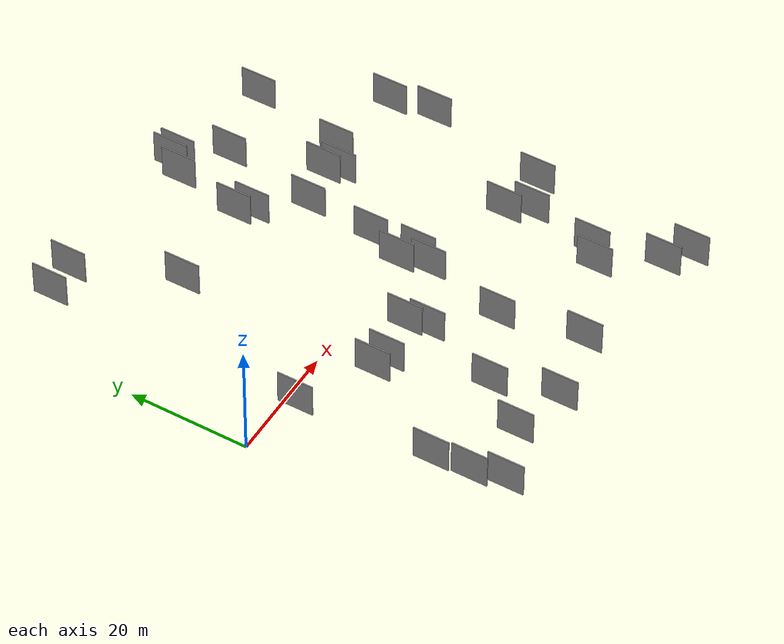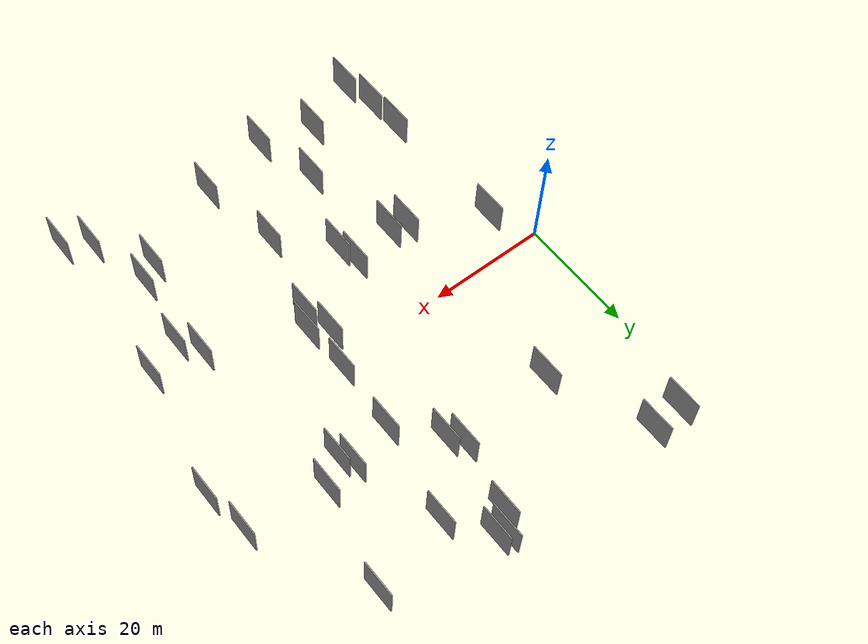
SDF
<sdf version="1.6">
 <world name="default">
  <scene>
   <sky><clouds><speed>12</speed></clouds></sky>
   <ambient>0.4 0.4 0.4 1</ambient>
   <background>0.7 0.7 0.7 1</background>
   <shadows>1</shadows>
  </scene>
  <gravity>0 0 -9.8066</gravity>
  <magnetic_field>6e-06 2.3e-05 -4.2e-05</magnetic_field>
  <physics default="0" name="default_physics" type="ode">
   <ode>
    <solver>
     <type>quick</type>
     <iters>10</iters>
     <sor>1.0</sor>
     <use_dynamic_moi_rescaling>0</use_dynamic_moi_rescaling>
    </solver>
    <constraints>
     <cfm>0</cfm>
     <erp>0.2</erp>
     <contact_max_correcting_vel>100</contact_max_correcting_vel>
     <contact_surface_layer>0.001</contact_surface_layer>
    </constraints>
   </ode>
   <max_step_size>0.004</max_step_size>
   <real_time_factor>1</real_time_factor>
   <real_time_update_rate>250</real_time_update_rate>
  </physics>
  <light name="sun" type="directional">
   <pose>0 0 10 0 0 0</pose>
   <diffuse>0.8 0.8 0.8 1</diffuse>
   <specular>0.2 0.2 0.2 1</specular>
   <attenuation>
    <range>1000</range>
    <constant>0.9</constant>
    <linear>0.01</linear>
    <quadratic>0.001</quadratic>
   </attenuation>
   <direction>-0.5 0.1 -0.9</direction>
  </light>
  <model name="grey_wall_1">
   <static>1</static>
   <pose>58.4703 34.0821 5.0 0.000000 0.000000 1.570796</pose>
   <link name="link">
    <pose>0 0 3.00 0 0 0</pose>
    <collision name="collision"><geometry><box><size>6.00 0.2 6.00</size></box></geometry></collision>
    <visual name="visual">
     <cast_shadows>0</cast_shadows>
     <geometry><box><size>6.00 0.2 6.00</size></box></geometry>
     <material>
      <script>
       <uri>model://grey_wall/materials/scripts</uri>
       <uri>model://grey_wall/materials/textures</uri>
       <name>vrc/grey_wall</name>
      </script>
     </material>
    </visual>
   </link>
  </model>
  <model name="grey_wall_2">
   <static>1</static>
   <pose>39.1289 -2.4536 5.0 0.000000 0.000000 1.570796</pose>
   <link name="link">
    <pose>0 0 3.00 0 0 0</pose>
    <collision name="collision"><geometry><box><size>6.00 0.2 6.00</size></box></geometry></collision>
    <visual name="visual">
     <cast_shadows>0</cast_shadows>
     <geometry><box><size>6.00 0.2 6.00</size></box></geometry>
     <material>
      <script>
       <uri>model://grey_wall/materials/scripts</uri>
       <uri>model://grey_wall/materials/textures</uri>
       <name>vrc/grey_wall</name>
      </script>
     </material>
    </visual>
   </link>
  </model>
  <model name="grey_wall_3">
   <static>1</static>
   <pose>37.2898 35.3310 5.0 0.000000 0.000000 1.570796</pose>
   <link name="link">
    <pose>0 0 3.00 0 0 0</pose>
    <collision name="collision"><geometry><box><size>6.00 0.2 6.00</size></box></geometry></collision>
    <visual name="visual">
     <cast_shadows>0</cast_shadows>
     <geometry><box><size>6.00 0.2 6.00</size></box></geometry>
     <material>
      <script>
       <uri>model://grey_wall/materials/scripts</uri>
       <uri>model://grey_wall/materials/textures</uri>
       <name>vrc/grey_wall</name>
      </script>
     </material>
    </visual>
   </link>
  </model>
  <model name="grey_wall_4">
   <static>1</static>
   <pose>7.5327 -27.0088 5.0 0.000000 0.000000 1.570796</pose>
   <link name="link">
    <pose>0 0 3.00 0 0 0</pose>
    <collision name="collision"><geometry><box><size>6.00 0.2 6.00</size></box></geometry></collision>
    <visual name="visual">
     <cast_shadows>0</cast_shadows>
     <geometry><box><size>6.00 0.2 6.00</size></box></geometry>
     <material>
      <script>
       <uri>model://grey_wall/materials/scripts</uri>
       <uri>model://grey_wall/materials/textures</uri>
       <name>vrc/grey_wall</name>
      </script>
     </material>
    </visual>
   </link>
  </model>
  <model name="grey_wall_5">
   <static>1</static>
   <pose>54.8426 17.7074 5.0 0.000000 0.000000 1.570796</pose>
   <link name="link">
    <pose>0 0 3.00 0 0 0</pose>
    <collision name="collision"><geometry><box><size>6.00 0.2 6.00</size></box></geometry></collision>
    <visual name="visual">
     <cast_shadows>0</cast_shadows>
     <geometry><box><size>6.00 0.2 6.00</size></box></geometry>
     <material>
      <script>
       <uri>model://grey_wall/materials/scripts</uri>
       <uri>model://grey_wall/materials/textures</uri>
       <name>vrc/grey_wall</name>
      </script>
     </material>
    </visual>
   </link>
  </model>
  <model name="grey_wall_6">
   <static>1</static>
   <pose>50.8543 14.8226 5.0 0.000000 0.000000 1.570796</pose>
   <link name="link">
    <pose>0 0 3.00 0 0 0</pose>
    <collision name="collision"><geometry><box><size>6.00 0.2 6.00</size></box></geometry></collision>
    <visual name="visual">
     <cast_shadows>0</cast_shadows>
     <geometry><box><size>6.00 0.2 6.00</size></box></geometry>
     <material>
      <script>
       <uri>model://grey_wall/materials/scripts</uri>
       <uri>model://grey_wall/materials/textures</uri>
       <name>vrc/grey_wall</name>
      </script>
     </material>
    </visual>
   </link>
  </model>
  <model name="grey_wall_7">
   <static>1</static>
   <pose>27.3128 -37.2842 5.0 0.000000 0.000000 1.570796</pose>
   <link name="link">
    <pose>0 0 3.00 0 0 0</pose>
    <collision name="collision"><geometry><box><size>6.00 0.2 6.00</size></box></geometry></collision>
    <visual name="visual">
     <cast_shadows>0</cast_shadows>
     <geometry><box><size>6.00 0.2 6.00</size></box></geometry>
     <material>
      <script>
       <uri>model://grey_wall/materials/scripts</uri>
       <uri>model://grey_wall/materials/textures</uri>
       <name>vrc/grey_wall</name>
      </script>
     </material>
    </visual>
   </link>
  </model>
  <model name="grey_wall_8">
   <static>1</static>
   <pose>63.1718 -39.9099 5.0 0.000000 0.000000 1.570796</pose>
   <link name="link">
    <pose>0 0 3.00 0 0 0</pose>
    <collision name="collision"><geometry><box><size>6.00 0.2 6.00</size></box></geometry></collision>
    <visual name="visual">
     <cast_shadows>0</cast_shadows>
     <geometry><box><size>6.00 0.2 6.00</size></box></geometry>
     <material>
      <script>
       <uri>model://grey_wall/materials/scripts</uri>
       <uri>model://grey_wall/materials/textures</uri>
       <name>vrc/grey_wall</name>
      </script>
     </material>
    </visual>
   </link>
  </model>
  <model name="grey_wall_9">
   <static>1</static>
   <pose>64.5312 -12.4695 5.0 0.000000 0.000000 1.570796</pose>
   <link name="link">
    <pose>0 0 3.00 0 0 0</pose>
    <collision name="collision"><geometry><box><size>6.00 0.2 6.00</size></box></geometry></collision>
    <visual name="visual">
     <cast_shadows>0</cast_shadows>
     <geometry><box><size>6.00 0.2 6.00</size></box></geometry>
     <material>
      <script>
       <uri>model://grey_wall/materials/scripts</uri>
       <uri>model://grey_wall/materials/textures</uri>
       <name>vrc/grey_wall</name>
      </script>
     </material>
    </visual>
   </link>
  </model>
  <model name="grey_wall_10">
   <static>1</static>
   <pose>18.1744 -10.7670 5.0 0.000000 0.000000 1.570796</pose>
   <link name="link">
    <pose>0 0 3.00 0 0 0</pose>
    <collision name="collision"><geometry><box><size>6.00 0.2 6.00</size></box></geometry></collision>
    <visual name="visual">
     <cast_shadows>0</cast_shadows>
     <geometry><box><size>6.00 0.2 6.00</size></box></geometry>
     <material>
      <script>
       <uri>model://grey_wall/materials/scripts</uri>
       <uri>model://grey_wall/materials/textures</uri>
       <name>vrc/grey_wall</name>
      </script>
     </material>
    </visual>
   </link>
  </model>
  <model name="grey_wall_11">
   <static>1</static>
   <pose>41.8810 -4.5876 5.0 0.000000 0.000000 1.570796</pose>
   <link name="link">
    <pose>0 0 3.00 0 0 0</pose>
    <collision name="collision"><geometry><box><size>6.00 0.2 6.00</size></box></geometry></collision>
    <visual name="visual">
     <cast_shadows>0</cast_shadows>
     <geometry><box><size>6.00 0.2 6.00</size></box></geometry>
     <material>
      <script>
       <uri>model://grey_wall/materials/scripts</uri>
       <uri>model://grey_wall/materials/textures</uri>
       <name>vrc/grey_wall</name>
      </script>
     </material>
    </visual>
   </link>
  </model>
  <model name="grey_wall_12">
   <static>1</static>
   <pose>41.5026 3.5121 5.0 0.000000 0.000000 1.570796</pose>
   <link name="link">
    <pose>0 0 3.00 0 0 0</pose>
    <collision name="collision"><geometry><box><size>6.00 0.2 6.00</size></box></geometry></collision>
    <visual name="visual">
     <cast_shadows>0</cast_shadows>
     <geometry><box><size>6.00 0.2 6.00</size></box></geometry>
     <material>
      <script>
       <uri>model://grey_wall/materials/scripts</uri>
       <uri>model://grey_wall/materials/textures</uri>
       <name>vrc/grey_wall</name>
      </script>
     </material>
    </visual>
   </link>
  </model>
  <model name="grey_wall_13">
   <static>1</static>
   <pose>45.2377 31.1383 5.0 0.000000 0.000000 1.570796</pose>
   <link name="link">
    <pose>0 0 3.00 0 0 0</pose>
    <collision name="collision"><geometry><box><size>6.00 0.2 6.00</size></box></geometry></collision>
    <visual name="visual">
     <cast_shadows>0</cast_shadows>
     <geometry><box><size>6.00 0.2 6.00</size></box></geometry>
     <material>
      <script>
       <uri>model://grey_wall/materials/scripts</uri>
       <uri>model://grey_wall/materials/textures</uri>
       <name>vrc/grey_wall</name>
      </script>
     </material>
    </visual>
   </link>
  </model>
  <model name="grey_wall_14">
   <static>1</static>
   <pose>39.2931 38.1117 5.0 0.000000 0.000000 1.570796</pose>
   <link name="link">
    <pose>0 0 3.00 0 0 0</pose>
    <collision name="collision"><geometry><box><size>6.00 0.2 6.00</size></box></geometry></collision>
    <visual name="visual">
     <cast_shadows>0</cast_shadows>
     <geometry><box><size>6.00 0.2 6.00</size></box></geometry>
     <material>
      <script>
       <uri>model://grey_wall/materials/scripts</uri>
       <uri>model://grey_wall/materials/textures</uri>
       <name>vrc/grey_wall</name>
      </script>
     </material>
    </visual>
   </link>
  </model>
  <model name="grey_wall_15">
   <static>1</static>
   <pose>29.2895 -13.5957 5.0 0.000000 0.000000 1.570796</pose>
   <link name="link">
    <pose>0 0 3.00 0 0 0</pose>
    <collision name="collision"><geometry><box><size>6.00 0.2 6.00</size></box></geometry></collision>
    <visual name="visual">
     <cast_shadows>0</cast_shadows>
     <geometry><box><size>6.00 0.2 6.00</size></box></geometry>
     <material>
      <script>
       <uri>model://grey_wall/materials/scripts</uri>
       <uri>model://grey_wall/materials/textures</uri>
       <name>vrc/grey_wall</name>
      </script>
     </material>
    </visual>
   </link>
  </model>
  <model name="grey_wall_16">
   <static>1</static>
   <pose>36.6816 21.6988 5.0 0.000000 0.000000 1.570796</pose>
   <link name="link">
    <pose>0 0 3.00 0 0 0</pose>
    <collision name="collision"><geometry><box><size>6.00 0.2 6.00</size></box></geometry></collision>
    <visual name="visual">
     <cast_shadows>0</cast_shadows>
     <geometry><box><size>6.00 0.2 6.00</size></box></geometry>
     <material>
      <script>
       <uri>model://grey_wall/materials/scripts</uri>
       <uri>model://grey_wall/materials/textures</uri>
       <name>vrc/grey_wall</name>
      </script>
     </material>
    </visual>
   </link>
  </model>
  <model name="grey_wall_17">
   <static>1</static>
   <pose>42.3460 15.0995 5.0 0.000000 0.000000 1.570796</pose>
   <link name="link">
    <pose>0 0 3.00 0 0 0</pose>
    <collision name="collision"><geometry><box><size>6.00 0.2 6.00</size></box></geometry></collision>
    <visual name="visual">
     <cast_shadows>0</cast_shadows>
     <geometry><box><size>6.00 0.2 6.00</size></box></geometry>
     <material>
      <script>
       <uri>model://grey_wall/materials/scripts</uri>
       <uri>model://grey_wall/materials/textures</uri>
       <name>vrc/grey_wall</name>
      </script>
     </material>
    </visual>
   </link>
  </model>
  <model name="grey_wall_18">
   <static>1</static>
   <pose>12.0139 38.8188 5.0 0.000000 0.000000 1.570796</pose>
   <link name="link">
    <pose>0 0 3.00 0 0 0</pose>
    <collision name="collision"><geometry><box><size>6.00 0.2 6.00</size></box></geometry></collision>
    <visual name="visual">
     <cast_shadows>0</cast_shadows>
     <geometry><box><size>6.00 0.2 6.00</size></box></geometry>
     <material>
      <script>
       <uri>model://grey_wall/materials/scripts</uri>
       <uri>model://grey_wall/materials/textures</uri>
       <name>vrc/grey_wall</name>
      </script>
     </material>
    </visual>
   </link>
  </model>
  <model name="grey_wall_19">
   <static>1</static>
   <pose>59.2169 -37.2343 5.0 0.000000 0.000000 1.570796</pose>
   <link name="link">
    <pose>0 0 3.00 0 0 0</pose>
    <collision name="collision"><geometry><box><size>6.00 0.2 6.00</size></box></geometry></collision>
    <visual name="visual">
     <cast_shadows>0</cast_shadows>
     <geometry><box><size>6.00 0.2 6.00</size></box></geometry>
     <material>
      <script>
       <uri>model://grey_wall/materials/scripts</uri>
       <uri>model://grey_wall/materials/textures</uri>
       <name>vrc/grey_wall</name>
      </script>
     </material>
    </visual>
   </link>
  </model>
  <model name="grey_wall_20">
   <static>1</static>
   <pose>7.8128 -33.2635 5.0 0.000000 0.000000 1.570796</pose>
   <link name="link">
    <pose>0 0 3.00 0 0 0</pose>
    <collision name="collision"><geometry><box><size>6.00 0.2 6.00</size></box></geometry></collision>
    <visual name="visual">
     <cast_shadows>0</cast_shadows>
     <geometry><box><size>6.00 0.2 6.00</size></box></geometry>
     <material>
      <script>
       <uri>model://grey_wall/materials/scripts</uri>
       <uri>model://grey_wall/materials/textures</uri>
       <name>vrc/grey_wall</name>
      </script>
     </material>
    </visual>
   </link>
  </model>
  <model name="grey_wall_21">
   <static>1</static>
   <pose>24.4814 -27.0619 5.0 0.000000 0.000000 1.570796</pose>
   <link name="link">
    <pose>0 0 3.00 0 0 0</pose>
    <collision name="collision"><geometry><box><size>6.00 0.2 6.00</size></box></geometry></collision>
    <visual name="visual">
     <cast_shadows>0</cast_shadows>
     <geometry><box><size>6.00 0.2 6.00</size></box></geometry>
     <material>
      <script>
       <uri>model://grey_wall/materials/scripts</uri>
       <uri>model://grey_wall/materials/textures</uri>
       <name>vrc/grey_wall</name>
      </script>
     </material>
    </visual>
   </link>
  </model>
  <model name="grey_wall_22">
   <static>1</static>
   <pose>6.5436 38.5340 5.0 0.000000 0.000000 1.570796</pose>
   <link name="link">
    <pose>0 0 3.00 0 0 0</pose>
    <collision name="collision"><geometry><box><size>6.00 0.2 6.00</size></box></geometry></collision>
    <visual name="visual">
     <cast_shadows>0</cast_shadows>
     <geometry><box><size>6.00 0.2 6.00</size></box></geometry>
     <material>
      <script>
       <uri>model://grey_wall/materials/scripts</uri>
       <uri>model://grey_wall/materials/textures</uri>
       <name>vrc/grey_wall</name>
      </script>
     </material>
    </visual>
   </link>
  </model>
  <model name="grey_wall_23">
   <static>1</static>
   <pose>49.6077 16.8620 5.0 0.000000 0.000000 1.570796</pose>
   <link name="link">
    <pose>0 0 3.00 0 0 0</pose>
    <collision name="collision"><geometry><box><size>6.00 0.2 6.00</size></box></geometry></collision>
    <visual name="visual">
     <cast_shadows>0</cast_shadows>
     <geometry><box><size>6.00 0.2 6.00</size></box></geometry>
     <material>
      <script>
       <uri>model://grey_wall/materials/scripts</uri>
       <uri>model://grey_wall/materials/textures</uri>
       <name>vrc/grey_wall</name>
      </script>
     </material>
    </visual>
   </link>
  </model>
  <model name="grey_wall_24">
   <static>1</static>
   <pose>18.7221 22.8347 5.0 0.000000 0.000000 1.570796</pose>
   <link name="link">
    <pose>0 0 3.00 0 0 0</pose>
    <collision name="collision"><geometry><box><size>6.00 0.2 6.00</size></box></geometry></collision>
    <visual name="visual">
     <cast_shadows>0</cast_shadows>
     <geometry><box><size>6.00 0.2 6.00</size></box></geometry>
     <material>
      <script>
       <uri>model://grey_wall/materials/scripts</uri>
       <uri>model://grey_wall/materials/textures</uri>
       <name>vrc/grey_wall</name>
      </script>
     </material>
    </visual>
   </link>
  </model>
  <model name="grey_wall_25">
   <static>1</static>
   <pose>56.4990 -26.4790 5.0 0.000000 0.000000 1.570796</pose>
   <link name="link">
    <pose>0 0 3.00 0 0 0</pose>
    <collision name="collision"><geometry><box><size>6.00 0.2 6.00</size></box></geometry></collision>
    <visual name="visual">
     <cast_shadows>0</cast_shadows>
     <geometry><box><size>6.00 0.2 6.00</size></box></geometry>
     <material>
      <script>
       <uri>model://grey_wall/materials/scripts</uri>
       <uri>model://grey_wall/materials/textures</uri>
       <name>vrc/grey_wall</name>
      </script>
     </material>
    </visual>
   </link>
  </model>
  <model name="grey_wall_26">
   <static>1</static>
   <pose>28.5734 -10.1430 5.0 0.000000 0.000000 1.570796</pose>
   <link name="link">
    <pose>0 0 3.00 0 0 0</pose>
    <collision name="collision"><geometry><box><size>6.00 0.2 6.00</size></box></geometry></collision>
    <visual name="visual">
     <cast_shadows>0</cast_shadows>
     <geometry><box><size>6.00 0.2 6.00</size></box></geometry>
     <material>
      <script>
       <uri>model://grey_wall/materials/scripts</uri>
       <uri>model://grey_wall/materials/textures</uri>
       <name>vrc/grey_wall</name>
      </script>
     </material>
    </visual>
   </link>
  </model>
  <model name="grey_wall_27">
   <static>1</static>
   <pose>56.4476 -11.1707 5.0 0.000000 0.000000 1.570796</pose>
   <link name="link">
    <pose>0 0 3.00 0 0 0</pose>
    <collision name="collision"><geometry><box><size>6.00 0.2 6.00</size></box></geometry></collision>
    <visual name="visual">
     <cast_shadows>0</cast_shadows>
     <geometry><box><size>6.00 0.2 6.00</size></box></geometry>
     <material>
      <script>
       <uri>model://grey_wall/materials/scripts</uri>
       <uri>model://grey_wall/materials/textures</uri>
       <name>vrc/grey_wall</name>
      </script>
     </material>
    </visual>
   </link>
  </model>
  <model name="grey_wall_28">
   <static>1</static>
   <pose>40.2530 -7.3576 5.0 0.000000 0.000000 1.570796</pose>
   <link name="link">
    <pose>0 0 3.00 0 0 0</pose>
    <collision name="collision"><geometry><box><size>6.00 0.2 6.00</size></box></geometry></collision>
    <visual name="visual">
     <cast_shadows>0</cast_shadows>
     <geometry><box><size>6.00 0.2 6.00</size></box></geometry>
     <material>
      <script>
       <uri>model://grey_wall/materials/scripts</uri>
       <uri>model://grey_wall/materials/textures</uri>
       <name>vrc/grey_wall</name>
      </script>
     </material>
    </visual>
   </link>
  </model>
  <model name="grey_wall_29">
   <static>1</static>
   <pose>67.8617 15.8248 5.0 0.000000 0.000000 1.570796</pose>
   <link name="link">
    <pose>0 0 3.00 0 0 0</pose>
    <collision name="collision"><geometry><box><size>6.00 0.2 6.00</size></box></geometry></collision>
    <visual name="visual">
     <cast_shadows>0</cast_shadows>
     <geometry><box><size>6.00 0.2 6.00</size></box></geometry>
     <material>
      <script>
       <uri>model://grey_wall/materials/scripts</uri>
       <uri>model://grey_wall/materials/textures</uri>
       <name>vrc/grey_wall</name>
      </script>
     </material>
    </visual>
   </link>
  </model>
  <model name="grey_wall_30">
   <static>1</static>
   <pose>53.5767 -28.5361 5.0 0.000000 0.000000 1.570796</pose>
   <link name="link">
    <pose>0 0 3.00 0 0 0</pose>
    <collision name="collision"><geometry><box><size>6.00 0.2 6.00</size></box></geometry></collision>
    <visual name="visual">
     <cast_shadows>0</cast_shadows>
     <geometry><box><size>6.00 0.2 6.00</size></box></geometry>
     <material>
      <script>
       <uri>model://grey_wall/materials/scripts</uri>
       <uri>model://grey_wall/materials/textures</uri>
       <name>vrc/grey_wall</name>
      </script>
     </material>
    </visual>
   </link>
  </model>
  <model name="grey_wall_31">
   <static>1</static>
   <pose>58.5955 -14.8465 5.0 0.000000 0.000000 1.570796</pose>
   <link name="link">
    <pose>0 0 3.00 0 0 0</pose>
    <collision name="collision"><geometry><box><size>6.00 0.2 6.00</size></box></geometry></collision>
    <visual name="visual">
     <cast_shadows>0</cast_shadows>
     <geometry><box><size>6.00 0.2 6.00</size></box></geometry>
     <material>
      <script>
       <uri>model://grey_wall/materials/scripts</uri>
       <uri>model://grey_wall/materials/textures</uri>
       <name>vrc/grey_wall</name>
      </script>
     </material>
    </visual>
   </link>
  </model>
  <model name="grey_wall_32">
   <static>1</static>
   <pose>39.2315 -34.7940 5.0 0.000000 0.000000 1.570796</pose>
   <link name="link">
    <pose>0 0 3.00 0 0 0</pose>
    <collision name="collision"><geometry><box><size>6.00 0.2 6.00</size></box></geometry></collision>
    <visual name="visual">
     <cast_shadows>0</cast_shadows>
     <geometry><box><size>6.00 0.2 6.00</size></box></geometry>
     <material>
      <script>
       <uri>model://grey_wall/materials/scripts</uri>
       <uri>model://grey_wall/materials/textures</uri>
       <name>vrc/grey_wall</name>
      </script>
     </material>
    </visual>
   </link>
  </model>
  <model name="grey_wall_33">
   <static>1</static>
   <pose>20.9404 -11.5386 5.0 0.000000 0.000000 1.570796</pose>
   <link name="link">
    <pose>0 0 3.00 0 0 0</pose>
    <collision name="collision"><geometry><box><size>6.00 0.2 6.00</size></box></geometry></collision>
    <visual name="visual">
     <cast_shadows>0</cast_shadows>
     <geometry><box><size>6.00 0.2 6.00</size></box></geometry>
     <material>
      <script>
       <uri>model://grey_wall/materials/scripts</uri>
       <uri>model://grey_wall/materials/textures</uri>
       <name>vrc/grey_wall</name>
      </script>
     </material>
    </visual>
   </link>
  </model>
  <model name="grey_wall_34">
   <static>1</static>
   <pose>6.5994 -4.5141 5.0 0.000000 0.000000 1.570796</pose>
   <link name="link">
    <pose>0 0 3.00 0 0 0</pose>
    <collision name="collision"><geometry><box><size>6.00 0.2 6.00</size></box></geometry></collision>
    <visual name="visual">
     <cast_shadows>0</cast_shadows>
     <geometry><box><size>6.00 0.2 6.00</size></box></geometry>
     <material>
      <script>
       <uri>model://grey_wall/materials/scripts</uri>
       <uri>model://grey_wall/materials/textures</uri>
       <name>vrc/grey_wall</name>
      </script>
     </material>
    </visual>
   </link>
  </model>
  <model name="grey_wall_35">
   <static>1</static>
   <pose>40.6539 37.6162 5.0 0.000000 0.000000 1.570796</pose>
   <link name="link">
    <pose>0 0 3.00 0 0 0</pose>
    <collision name="collision"><geometry><box><size>6.00 0.2 6.00</size></box></geometry></collision>
    <visual name="visual">
     <cast_shadows>0</cast_shadows>
     <geometry><box><size>6.00 0.2 6.00</size></box></geometry>
     <material>
      <script>
       <uri>model://grey_wall/materials/scripts</uri>
       <uri>model://grey_wall/materials/textures</uri>
       <name>vrc/grey_wall</name>
      </script>
     </material>
    </visual>
   </link>
  </model>
  <model name="grey_wall_36">
   <static>1</static>
   <pose>9.0481 -38.6206 5.0 0.000000 0.000000 1.570796</pose>
   <link name="link">
    <pose>0 0 3.00 0 0 0</pose>
    <collision name="collision"><geometry><box><size>6.00 0.2 6.00</size></box></geometry></collision>
    <visual name="visual">
     <cast_shadows>0</cast_shadows>
     <geometry><box><size>6.00 0.2 6.00</size></box></geometry>
     <material>
      <script>
       <uri>model://grey_wall/materials/scripts</uri>
       <uri>model://grey_wall/materials/textures</uri>
       <name>vrc/grey_wall</name>
      </script>
     </material>
    </visual>
   </link>
  </model>
  <model name="grey_wall_37">
   <static>1</static>
   <pose>18.4889 -34.8684 5.0 0.000000 0.000000 1.570796</pose>
   <link name="link">
    <pose>0 0 3.00 0 0 0</pose>
    <collision name="collision"><geometry><box><size>6.00 0.2 6.00</size></box></geometry></collision>
    <visual name="visual">
     <cast_shadows>0</cast_shadows>
     <geometry><box><size>6.00 0.2 6.00</size></box></geometry>
     <material>
      <script>
       <uri>model://grey_wall/materials/scripts</uri>
       <uri>model://grey_wall/materials/textures</uri>
       <name>vrc/grey_wall</name>
      </script>
     </material>
    </visual>
   </link>
  </model>
  <model name="grey_wall_38">
   <static>1</static>
   <pose>36.7751 -21.2973 5.0 0.000000 0.000000 1.570796</pose>
   <link name="link">
    <pose>0 0 3.00 0 0 0</pose>
    <collision name="collision"><geometry><box><size>6.00 0.2 6.00</size></box></geometry></collision>
    <visual name="visual">
     <cast_shadows>0</cast_shadows>
     <geometry><box><size>6.00 0.2 6.00</size></box></geometry>
     <material>
      <script>
       <uri>model://grey_wall/materials/scripts</uri>
       <uri>model://grey_wall/materials/textures</uri>
       <name>vrc/grey_wall</name>
      </script>
     </material>
    </visual>
   </link>
  </model>
  <model name="grey_wall_39">
   <static>1</static>
   <pose>68.9948 8.4508 5.0 0.000000 0.000000 1.570796</pose>
   <link name="link">
    <pose>0 0 3.00 0 0 0</pose>
    <collision name="collision"><geometry><box><size>6.00 0.2 6.00</size></box></geometry></collision>
    <visual name="visual">
     <cast_shadows>0</cast_shadows>
     <geometry><box><size>6.00 0.2 6.00</size></box></geometry>
     <material>
      <script>
       <uri>model://grey_wall/materials/scripts</uri>
       <uri>model://grey_wall/materials/textures</uri>
       <name>vrc/grey_wall</name>
      </script>
     </material>
    </visual>
   </link>
  </model>
  <model name="grey_wall_40">
   <static>1</static>
   <pose>35.0698 23.9706 5.0 0.000000 0.000000 1.570796</pose>
   <link name="link">
    <pose>0 0 3.00 0 0 0</pose>
    <collision name="collision"><geometry><box><size>6.00 0.2 6.00</size></box></geometry></collision>
    <visual name="visual">
     <cast_shadows>0</cast_shadows>
     <geometry><box><size>6.00 0.2 6.00</size></box></geometry>
     <material>
      <script>
       <uri>model://grey_wall/materials/scripts</uri>
       <uri>model://grey_wall/materials/textures</uri>
       <name>vrc/grey_wall</name>
      </script>
     </material>
    </visual>
   </link>
  </model>
 </world>
</sdf>
